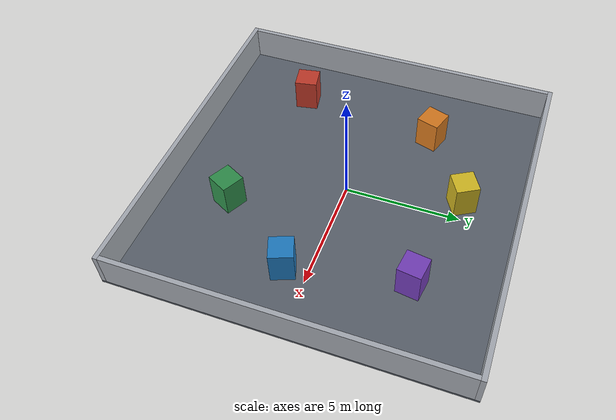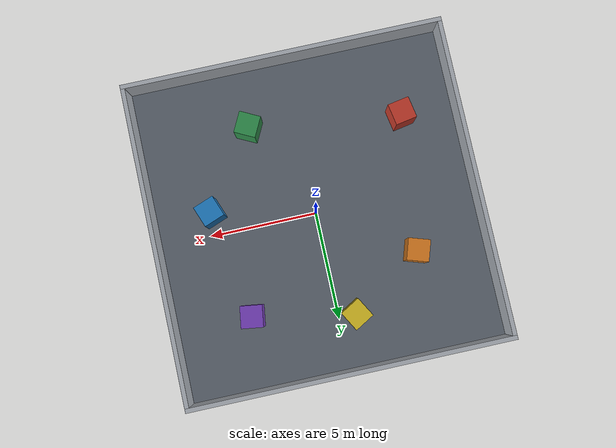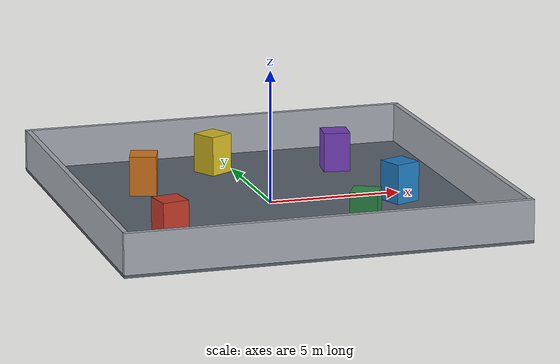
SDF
<?xml version="1.0"?>
<sdf version="1.6">
  <world name="default">
    <include>
      <uri>model://sun</uri>
    </include>

    <!-- 15 m x 15 m enclosed test arena. -->
    <model name="pm01_test_arena">
      <static>true</static>
      <link name="floor">
        <pose>0 0 -0.05 0 0 0</pose>
        <inertial><mass>1</mass></inertial>
        <collision name="collision">
          <geometry><box><size>15 15 0.1</size></box></geometry>
        </collision>
        <visual name="visual">
          <geometry><box><size>15 15 0.1</size></box></geometry>
          <material>
            <ambient>0.35 0.38 0.42 1</ambient>
            <diffuse>0.35 0.38 0.42 1</diffuse>
          </material>
        </visual>
      </link>

      <link name="wall_north">
        <pose>0 7.4 0.75 0 0 0</pose>
        <inertial><mass>1</mass></inertial>
        <collision name="collision">
          <geometry><box><size>15 0.2 1.5</size></box></geometry>
        </collision>
        <visual name="visual">
          <geometry><box><size>15 0.2 1.5</size></box></geometry>
          <material>
            <ambient>0.65 0.67 0.7 1</ambient>
            <diffuse>0.65 0.67 0.7 1</diffuse>
          </material>
        </visual>
      </link>
      <link name="wall_south">
        <pose>0 -7.4 0.75 0 0 0</pose>
        <inertial><mass>1</mass></inertial>
        <collision name="collision">
          <geometry><box><size>15 0.2 1.5</size></box></geometry>
        </collision>
        <visual name="visual">
          <geometry><box><size>15 0.2 1.5</size></box></geometry>
          <material>
            <ambient>0.65 0.67 0.7 1</ambient>
            <diffuse>0.65 0.67 0.7 1</diffuse>
          </material>
        </visual>
      </link>
      <link name="wall_east">
        <pose>7.4 0 0.75 0 0 0</pose>
        <inertial><mass>1</mass></inertial>
        <collision name="collision">
          <geometry><box><size>0.2 14.6 1.5</size></box></geometry>
        </collision>
        <visual name="visual">
          <geometry><box><size>0.2 14.6 1.5</size></box></geometry>
          <material>
            <ambient>0.65 0.67 0.7 1</ambient>
            <diffuse>0.65 0.67 0.7 1</diffuse>
          </material>
        </visual>
      </link>
      <link name="wall_west">
        <pose>-7.4 0 0.75 0 0 0</pose>
        <inertial><mass>1</mass></inertial>
        <collision name="collision">
          <geometry><box><size>0.2 14.6 1.5</size></box></geometry>
        </collision>
        <visual name="visual">
          <geometry><box><size>0.2 14.6 1.5</size></box></geometry>
          <material>
            <ambient>0.65 0.67 0.7 1</ambient>
            <diffuse>0.65 0.67 0.7 1</diffuse>
          </material>
        </visual>
      </link>

      <!-- Deterministic random layout; the central spawn area stays clear. -->
      <link name="obstacle_1">
        <pose>-4.8 -3.6 0.75 0 0 0.18</pose>
        <inertial><mass>1</mass></inertial>
        <collision name="collision">
          <geometry><box><size>1 1 1.5</size></box></geometry>
        </collision>
        <visual name="visual">
          <geometry><box><size>1 1 1.5</size></box></geometry>
          <material>
            <ambient>0.75 0.22 0.16 1</ambient>
            <diffuse>0.75 0.22 0.16 1</diffuse>
          </material>
        </visual>
      </link>
      <link name="obstacle_2">
        <pose>-4.1 2.7 0.75 0 0 -0.31</pose>
        <inertial><mass>1</mass></inertial>
        <collision name="collision">
          <geometry><box><size>1 1 1.5</size></box></geometry>
        </collision>
        <visual name="visual">
          <geometry><box><size>1 1 1.5</size></box></geometry>
          <material>
            <ambient>0.83 0.47 0.12 1</ambient>
            <diffuse>0.83 0.47 0.12 1</diffuse>
          </material>
        </visual>
      </link>
      <link name="obstacle_3">
        <pose>-0.8 4.9 0.75 0 0 0.52</pose>
        <inertial><mass>1</mass></inertial>
        <collision name="collision">
          <geometry><box><size>1 1 1.5</size></box></geometry>
        </collision>
        <visual name="visual">
          <geometry><box><size>1 1 1.5</size></box></geometry>
          <material>
            <ambient>0.82 0.72 0.13 1</ambient>
            <diffuse>0.82 0.72 0.13 1</diffuse>
          </material>
        </visual>
      </link>
      <link name="obstacle_4">
        <pose>2.2 -4.5 0.75 0 0 -0.47</pose>
        <inertial><mass>1</mass></inertial>
        <collision name="collision">
          <geometry><box><size>1 1 1.5</size></box></geometry>
        </collision>
        <visual name="visual">
          <geometry><box><size>1 1 1.5</size></box></geometry>
          <material>
            <ambient>0.18 0.55 0.29 1</ambient>
            <diffuse>0.18 0.55 0.29 1</diffuse>
          </material>
        </visual>
      </link>
      <link name="obstacle_5">
        <pose>4.7 -1.0 0.75 0 0 0.36</pose>
        <inertial><mass>1</mass></inertial>
        <collision name="collision">
          <geometry><box><size>1 1 1.5</size></box></geometry>
        </collision>
        <visual name="visual">
          <geometry><box><size>1 1 1.5</size></box></geometry>
          <material>
            <ambient>0.12 0.48 0.75 1</ambient>
            <diffuse>0.12 0.48 0.75 1</diffuse>
          </material>
        </visual>
      </link>
      <link name="obstacle_6">
        <pose>3.8 4.0 0.75 0 0 -0.14</pose>
        <inertial><mass>1</mass></inertial>
        <collision name="collision">
          <geometry><box><size>1 1 1.5</size></box></geometry>
        </collision>
        <visual name="visual">
          <geometry><box><size>1 1 1.5</size></box></geometry>
          <material>
            <ambient>0.45 0.24 0.72 1</ambient>
            <diffuse>0.45 0.24 0.72 1</diffuse>
          </material>
        </visual>
      </link>
    </model>

    <scene>
      <ambient>0.45 0.45 0.45 1</ambient>
      <background>0.7 0.7 0.7 1</background>
      <shadows>true</shadows>
      <grid>true</grid>
    </scene>

    <physics name="dart_500hz" type="dart">
      <max_step_size>0.002</max_step_size>
      <real_time_update_rate>500</real_time_update_rate>
    </physics>

    <gui fullscreen="0">
      <camera name="pm01_camera">
        <pose>3.2 -3.0 1.8 0 0.25 2.2</pose>
        <view_controller>orbit</view_controller>
        <projection_type>perspective</projection_type>
      </camera>
    </gui>
  </world>
</sdf>
